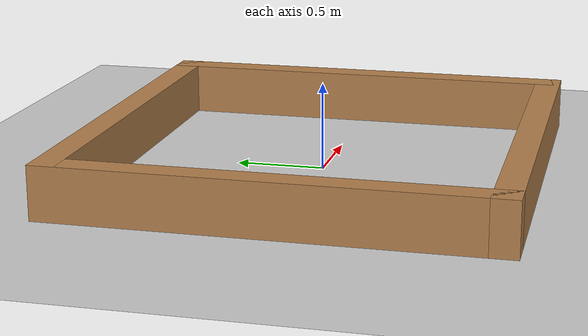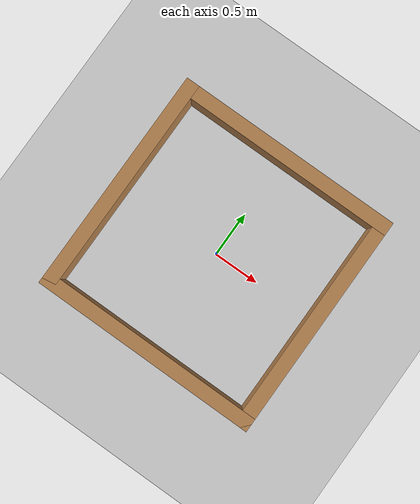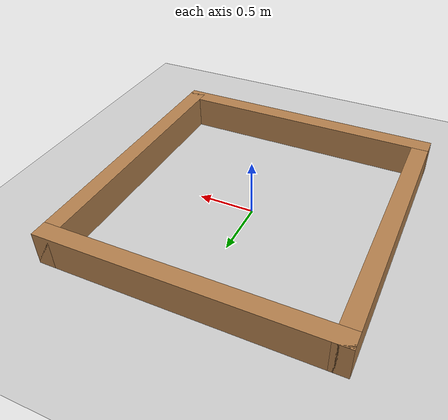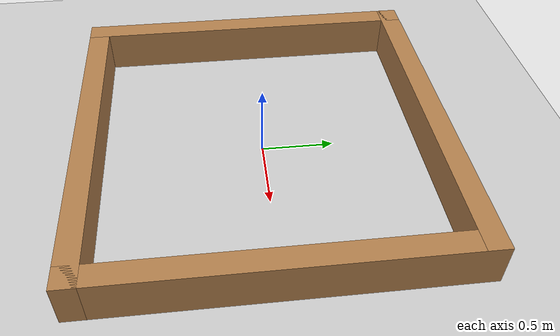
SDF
<sdf version="1.6">
 <world name="default">
  <light name="sun" type="directional">
   <pose>0 0 10 0 -0 0</pose>
   <diffuse>0.8 0.8 0.8 1</diffuse>
   <specular>0.1 0.1 0.1 1</specular>
   <attenuation>
    <range>1000</range>
    <constant>0.9</constant>
    <linear>0.01</linear>
    <quadratic>0.001</quadratic>
   </attenuation>
   <direction>-0.5 0.5 -1</direction>
  </light>
  <model name="ground_plane">
   <static>1</static>
   <link name="link">
    <collision name="collision">
     <geometry><plane><normal>0 0 1</normal><size>100 100</size></plane></geometry>
     <surface><friction><ode><mu>100</mu><mu2>50</mu2></ode></friction></surface>
    </collision>
    <visual name="visual">
     <cast_shadows>0</cast_shadows>
     <geometry><plane><normal>0 0 1</normal><size>100 100</size></plane></geometry>
     <material>
      <script><uri>file://media/materials/scripts/gazebo.material</uri><name>Gazebo/Grey</name></script>
     </material>
    </visual>
   </link>
  </model>
  <gravity>0 0 -9.8</gravity>
  <magnetic_field>6e-06 2.3e-05 -4.2e-05</magnetic_field>
  <atmosphere type="adiabatic"/>
  <physics name="default_physics" default="0" type="ode">
   <max_step_size>0.001</max_step_size>
   <real_time_factor>1</real_time_factor>
   <real_time_update_rate>1000</real_time_update_rate>
  </physics>
  <scene><ambient>0.4 0.4 0.4 1</ambient><background>0.7 0.7 0.7 1</background><shadows>1</shadows></scene>
  <spherical_coordinates>
   <surface_model>EARTH_WGS84</surface_model>
   <latitude_deg>0</latitude_deg>
   <longitude_deg>0</longitude_deg>
   <elevation>0</elevation>
   <heading_deg>0</heading_deg>
  </spherical_coordinates>
  <model name="Pared">
   <link name="Wall_23">
    <collision name="Wall_23_Collision">
     <geometry><box><size>2.5 0.15 0.3</size></box></geometry>
     <pose>0 0 0.15 0 -0 0</pose>
    </collision>
    <visual name="Wall_23_Visual">
     <pose>0 0 0.15 0 -0 0</pose>
     <geometry><box><size>2.5 0.15 0.3</size></box></geometry>
     <material>
      <script><uri>file://media/materials/scripts/gazebo.material</uri><name>Gazebo/Wood</name></script>
      <ambient>1 1 1 1</ambient>
     </material>
    </visual>
    <pose>-1.175 0 0 0 -0 1.5708</pose>
   </link>
   <link name="Wall_28">
    <collision name="Wall_28_Collision">
     <geometry><box><size>2.5 0.15 0.3</size></box></geometry>
     <pose>0 0 0.15 0 -0 0</pose>
    </collision>
    <visual name="Wall_28_Visual">
     <pose>0 0 0.15 0 -0 0</pose>
     <geometry><box><size>2.5 0.15 0.3</size></box></geometry>
     <material>
      <script><uri>file://media/materials/scripts/gazebo.material</uri><name>Gazebo/Wood</name></script>
      <ambient>1 1 1 1</ambient>
     </material>
    </visual>
    <pose>0 1.175 0 0 -0 0</pose>
   </link>
   <link name="Wall_29">
    <collision name="Wall_29_Collision">
     <geometry><box><size>2.5 0.15 0.3</size></box></geometry>
     <pose>0 0 0.15 0 -0 0</pose>
    </collision>
    <visual name="Wall_29_Visual">
     <pose>0 0 0.15 0 -0 0</pose>
     <geometry><box><size>2.5 0.15 0.3</size></box></geometry>
     <material>
      <script><uri>file://media/materials/scripts/gazebo.material</uri><name>Gazebo/Wood</name></script>
      <ambient>1 1 1 1</ambient>
     </material>
    </visual>
    <pose>1.175 0 0 0 0 -1.5708</pose>
   </link>
   <link name="Wall_30">
    <collision name="Wall_30_Collision">
     <geometry><box><size>2.5 0.15 0.3</size></box></geometry>
     <pose>0 0 0.15 0 -0 0</pose>
    </collision>
    <visual name="Wall_30_Visual">
     <pose>0 0 0.15 0 -0 0</pose>
     <geometry><box><size>2.5 0.15 0.3</size></box></geometry>
     <material>
      <script><uri>file://media/materials/scripts/gazebo.material</uri><name>Gazebo/Wood</name></script>
      <ambient>1 1 1 1</ambient>
     </material>
    </visual>
    <pose>0 -1.175 0 0 -0 3.14159</pose>
   </link>
   <static>1</static>
  </model>
 </world>
</sdf>
